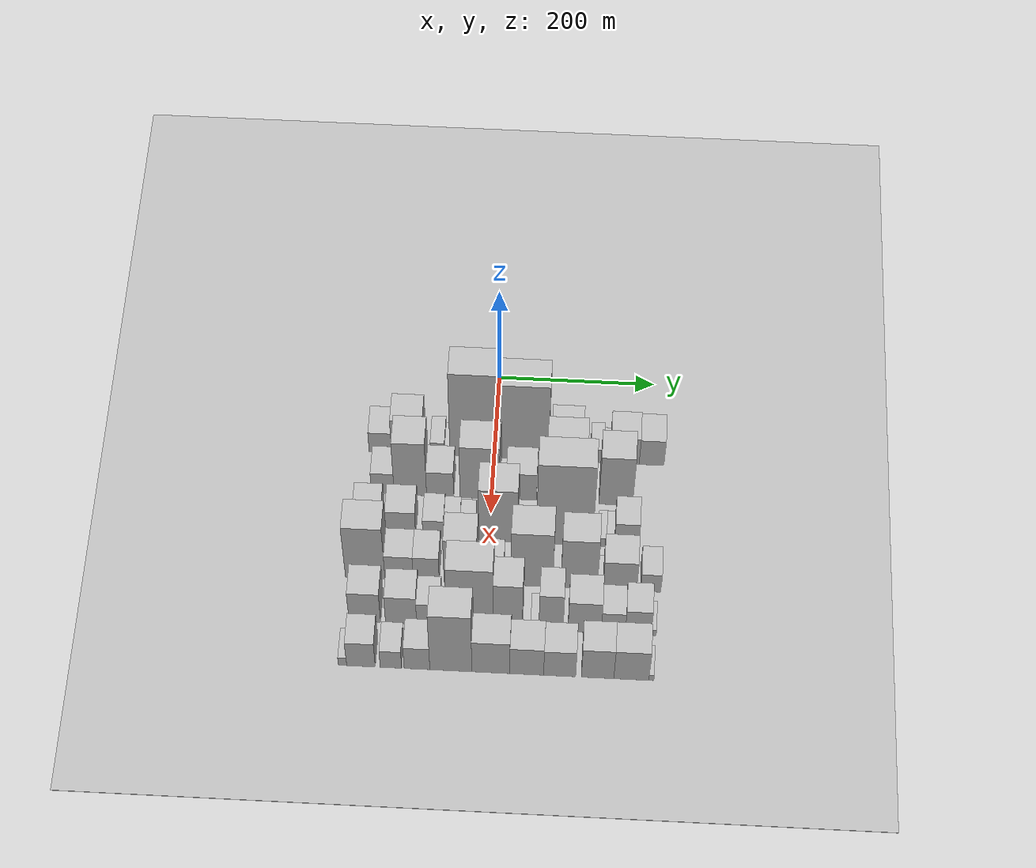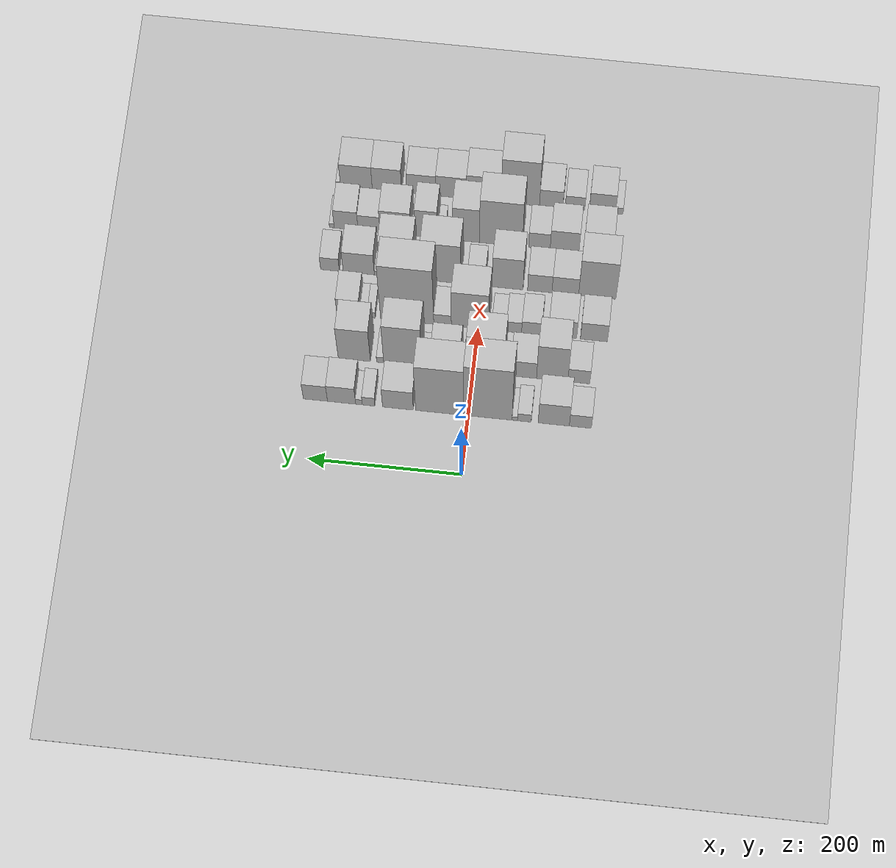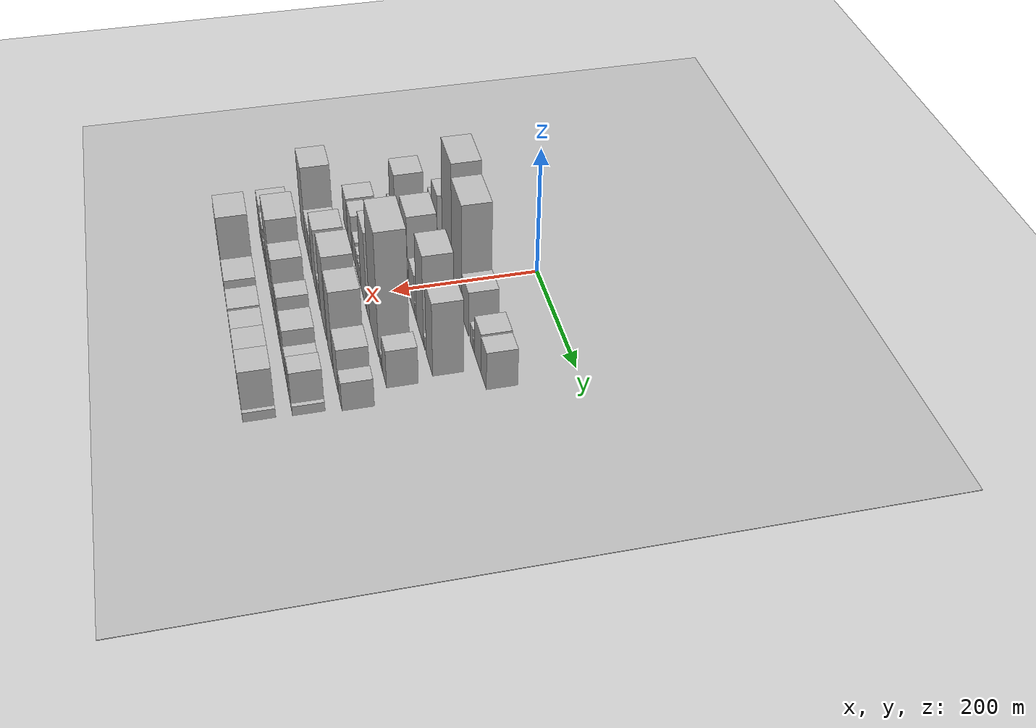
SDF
<sdf version="1.6">
 <world name="default">
  <include><name>ground_plane_1</name><uri>model://HANNAS_ground_plane</uri></include>
  <include>
   <name>ground_plane_2</name>
   <uri>model://HANNAS_ground_plane</uri>
   <pose>100 0 0  0 0 0</pose>
  </include>
  <model name="building_22">
   <static>1</static>
   <pose>100.0000 -145.6311 0 0.000000 0.000000 0.000000</pose>
   <link name="link">
    <pose>0 0 24.00 0 0 0</pose>
    <collision name="collision"><geometry><box><size>40.0000 28.5881 48.0000</size></box></geometry></collision>
    <visual name="visual">
     <cast_shadows>0</cast_shadows>
     <geometry><box><size>40.0000 28.5881 48.0000</size></box></geometry>
     <material>
      <script>
       <uri>model://HANNAS_wall/materials/scripts</uri>
       <uri>model://HANNAS_wall/materials/textures</uri>
       <name>vrc/HANNAS_wall</name>
      </script>
     </material>
    </visual>
   </link>
  </model>
  <model name="building_23">
   <static>1</static>
   <pose>100.0000 -111.0556 0 0.000000 0.000000 0.000000</pose>
   <link name="link">
    <pose>0 0 40.50 0 0 0</pose>
    <collision name="collision"><geometry><box><size>40.0000 40.5629 81.0000</size></box></geometry></collision>
    <visual name="visual">
     <cast_shadows>0</cast_shadows>
     <geometry><box><size>40.0000 40.5629 81.0000</size></box></geometry>
     <material>
      <script>
       <uri>model://HANNAS_wall/materials/scripts</uri>
       <uri>model://HANNAS_wall/materials/textures</uri>
       <name>vrc/HANNAS_wall</name>
      </script>
     </material>
    </visual>
   </link>
  </model>
  <model name="building_24">
   <static>1</static>
   <pose>100.0000 -72.7800 0 0.000000 0.000000 0.000000</pose>
   <link name="link">
    <pose>0 0 15.00 0 0 0</pose>
    <collision name="collision"><geometry><box><size>40.0000 17.9882 30.0000</size></box></geometry></collision>
    <visual name="visual">
     <cast_shadows>0</cast_shadows>
     <geometry><box><size>40.0000 17.9882 30.0000</size></box></geometry>
     <material>
      <script>
       <uri>model://HANNAS_wall/materials/scripts</uri>
       <uri>model://HANNAS_wall/materials/textures</uri>
       <name>vrc/HANNAS_wall</name>
      </script>
     </material>
    </visual>
   </link>
  </model>
  <model name="building_25">
   <static>1</static>
   <pose>100.0000 -60.3088 0 0.000000 0.000000 0.000000</pose>
   <link name="link">
    <pose>0 0 7.50 0 0 0</pose>
    <collision name="collision"><geometry><box><size>40.0000 6.9542 15.0000</size></box></geometry></collision>
    <visual name="visual">
     <cast_shadows>0</cast_shadows>
     <geometry><box><size>40.0000 6.9542 15.0000</size></box></geometry>
     <material>
      <script>
       <uri>model://HANNAS_wall/materials/scripts</uri>
       <uri>model://HANNAS_wall/materials/textures</uri>
       <name>vrc/HANNAS_wall</name>
      </script>
     </material>
    </visual>
   </link>
  </model>
  <model name="building_26">
   <static>1</static>
   <pose>100.0000 -25.2397 0 0.000000 0.000000 0.000000</pose>
   <link name="link">
    <pose>0 0 99.00 0 0 0</pose>
    <collision name="collision"><geometry><box><size>40.0000 63.1840 198.0000</size></box></geometry></collision>
    <visual name="visual">
     <cast_shadows>0</cast_shadows>
     <geometry><box><size>40.0000 63.1840 198.0000</size></box></geometry>
     <material>
      <script>
       <uri>model://HANNAS_wall/materials/scripts</uri>
       <uri>model://HANNAS_wall/materials/textures</uri>
       <name>vrc/HANNAS_wall</name>
      </script>
     </material>
    </visual>
   </link>
  </model>
  <model name="building_27">
   <static>1</static>
   <pose>100.0000 37.5403 0 0.000000 0.000000 0.000000</pose>
   <link name="link">
    <pose>0 0 88.50 0 0 0</pose>
    <collision name="collision"><geometry><box><size>40.0000 62.3761 177.0000</size></box></geometry></collision>
    <visual name="visual">
     <cast_shadows>0</cast_shadows>
     <geometry><box><size>40.0000 62.3761 177.0000</size></box></geometry>
     <material>
      <script>
       <uri>model://HANNAS_wall/materials/scripts</uri>
       <uri>model://HANNAS_wall/materials/textures</uri>
       <name>vrc/HANNAS_wall</name>
      </script>
     </material>
    </visual>
   </link>
  </model>
  <model name="building_28">
   <static>1</static>
   <pose>100.0000 91.8347 0 0.000000 0.000000 0.000000</pose>
   <link name="link">
    <pose>0 0 36.00 0 0 0</pose>
    <collision name="collision"><geometry><box><size>40.0000 40.2126 72.0000</size></box></geometry></collision>
    <visual name="visual">
     <cast_shadows>0</cast_shadows>
     <geometry><box><size>40.0000 40.2126 72.0000</size></box></geometry>
     <material>
      <script>
       <uri>model://HANNAS_wall/materials/scripts</uri>
       <uri>model://HANNAS_wall/materials/textures</uri>
       <name>vrc/HANNAS_wall</name>
      </script>
     </material>
    </visual>
   </link>
  </model>
  <model name="building_29">
   <static>1</static>
   <pose>100.0000 130.2012 0 0.000000 0.000000 0.000000</pose>
   <link name="link">
    <pose>0 0 16.50 0 0 0</pose>
    <collision name="collision"><geometry><box><size>40.0000 16.5202 33.0000</size></box></geometry></collision>
    <visual name="visual">
     <cast_shadows>0</cast_shadows>
     <geometry><box><size>40.0000 16.5202 33.0000</size></box></geometry>
     <material>
      <script>
       <uri>model://HANNAS_wall/materials/scripts</uri>
       <uri>model://HANNAS_wall/materials/textures</uri>
       <name>vrc/HANNAS_wall</name>
      </script>
     </material>
    </visual>
   </link>
  </model>
  <model name="building_30">
   <static>1</static>
   <pose>100.0000 142.7004 0 0.000000 0.000000 0.000000</pose>
   <link name="link">
    <pose>0 0 10.50 0 0 0</pose>
    <collision name="collision"><geometry><box><size>40.0000 8.4783 21.0000</size></box></geometry></collision>
    <visual name="visual">
     <cast_shadows>0</cast_shadows>
     <geometry><box><size>40.0000 8.4783 21.0000</size></box></geometry>
     <material>
      <script>
       <uri>model://HANNAS_wall/materials/scripts</uri>
       <uri>model://HANNAS_wall/materials/textures</uri>
       <name>vrc/HANNAS_wall</name>
      </script>
     </material>
    </visual>
   </link>
  </model>
  <model name="building_31">
   <static>1</static>
   <pose>100.0000 165.3753 0 0.000000 0.000000 0.000000</pose>
   <link name="link">
    <pose>0 0 31.50 0 0 0</pose>
    <collision name="collision"><geometry><box><size>40.0000 36.8715 63.0000</size></box></geometry></collision>
    <visual name="visual">
     <cast_shadows>0</cast_shadows>
     <geometry><box><size>40.0000 36.8715 63.0000</size></box></geometry>
     <material>
      <script>
       <uri>model://HANNAS_wall/materials/scripts</uri>
       <uri>model://HANNAS_wall/materials/textures</uri>
       <name>vrc/HANNAS_wall</name>
      </script>
     </material>
    </visual>
   </link>
  </model>
  <model name="building_32">
   <static>1</static>
   <pose>100.0000 199.5720 0 0.000000 0.000000 0.000000</pose>
   <link name="link">
    <pose>0 0 30.00 0 0 0</pose>
    <collision name="collision"><geometry><box><size>40.0000 31.5218 60.0000</size></box></geometry></collision>
    <visual name="visual">
     <cast_shadows>0</cast_shadows>
     <geometry><box><size>40.0000 31.5218 60.0000</size></box></geometry>
     <material>
      <script>
       <uri>model://HANNAS_wall/materials/scripts</uri>
       <uri>model://HANNAS_wall/materials/textures</uri>
       <name>vrc/HANNAS_wall</name>
      </script>
     </material>
    </visual>
   </link>
  </model>
  <model name="building_75">
   <static>1</static>
   <pose>160.0000 -137.8354 0 0.000000 0.000000 0.000000</pose>
   <link name="link">
    <pose>0 0 25.50 0 0 0</pose>
    <collision name="collision"><geometry><box><size>40.0000 28.6301 51.0000</size></box></geometry></collision>
    <visual name="visual">
     <cast_shadows>0</cast_shadows>
     <geometry><box><size>40.0000 28.6301 51.0000</size></box></geometry>
     <material>
      <script>
       <uri>model://HANNAS_wall/materials/scripts</uri>
       <uri>model://HANNAS_wall/materials/textures</uri>
       <name>vrc/HANNAS_wall</name>
      </script>
     </material>
    </visual>
   </link>
  </model>
  <model name="building_76">
   <static>1</static>
   <pose>160.0000 -103.0499 0 0.000000 0.000000 0.000000</pose>
   <link name="link">
    <pose>0 0 64.50 0 0 0</pose>
    <collision name="collision"><geometry><box><size>40.0000 40.9409 129.0000</size></box></geometry></collision>
    <visual name="visual">
     <cast_shadows>0</cast_shadows>
     <geometry><box><size>40.0000 40.9409 129.0000</size></box></geometry>
     <material>
      <script>
       <uri>model://HANNAS_wall/materials/scripts</uri>
       <uri>model://HANNAS_wall/materials/textures</uri>
       <name>vrc/HANNAS_wall</name>
      </script>
     </material>
    </visual>
   </link>
  </model>
  <model name="building_77">
   <static>1</static>
   <pose>160.0000 -65.5021 0 0.000000 0.000000 0.000000</pose>
   <link name="link">
    <pose>0 0 30.00 0 0 0</pose>
    <collision name="collision"><geometry><box><size>40.0000 34.1546 60.0000</size></box></geometry></collision>
    <visual name="visual">
     <cast_shadows>0</cast_shadows>
     <geometry><box><size>40.0000 34.1546 60.0000</size></box></geometry>
     <material>
      <script>
       <uri>model://HANNAS_wall/materials/scripts</uri>
       <uri>model://HANNAS_wall/materials/textures</uri>
       <name>vrc/HANNAS_wall</name>
      </script>
     </material>
    </visual>
   </link>
  </model>
  <model name="building_78">
   <static>1</static>
   <pose>160.0000 -15.3970 0 0.000000 0.000000 0.000000</pose>
   <link name="link">
    <pose>0 0 63.00 0 0 0</pose>
    <collision name="collision"><geometry><box><size>40.0000 50.0556 126.0000</size></box></geometry></collision>
    <visual name="visual">
     <cast_shadows>0</cast_shadows>
     <geometry><box><size>40.0000 50.0556 126.0000</size></box></geometry>
     <material>
      <script>
       <uri>model://HANNAS_wall/materials/scripts</uri>
       <uri>model://HANNAS_wall/materials/textures</uri>
       <name>vrc/HANNAS_wall</name>
      </script>
     </material>
    </visual>
   </link>
  </model>
  <model name="building_79">
   <static>1</static>
   <pose>160.0000 36.9061 0 0.000000 0.000000 0.000000</pose>
   <link name="link">
    <pose>0 0 33.00 0 0 0</pose>
    <collision name="collision"><geometry><box><size>40.0000 38.5506 66.0000</size></box></geometry></collision>
    <visual name="visual">
     <cast_shadows>0</cast_shadows>
     <geometry><box><size>40.0000 38.5506 66.0000</size></box></geometry>
     <material>
      <script>
       <uri>model://HANNAS_wall/materials/scripts</uri>
       <uri>model://HANNAS_wall/materials/textures</uri>
       <name>vrc/HANNAS_wall</name>
      </script>
     </material>
    </visual>
   </link>
  </model>
  <model name="building_80">
   <static>1</static>
   <pose>160.0000 61.9973 0 0.000000 0.000000 0.000000</pose>
   <link name="link">
    <pose>0 0 12.00 0 0 0</pose>
    <collision name="collision"><geometry><box><size>40.0000 11.6319 24.0000</size></box></geometry></collision>
    <visual name="visual">
     <cast_shadows>0</cast_shadows>
     <geometry><box><size>40.0000 11.6319 24.0000</size></box></geometry>
     <material>
      <script>
       <uri>model://HANNAS_wall/materials/scripts</uri>
       <uri>model://HANNAS_wall/materials/textures</uri>
       <name>vrc/HANNAS_wall</name>
      </script>
     </material>
    </visual>
   </link>
  </model>
  <model name="building_81">
   <static>1</static>
   <pose>160.0000 92.5767 0 0.000000 0.000000 0.000000</pose>
   <link name="link">
    <pose>0 0 72.00 0 0 0</pose>
    <collision name="collision"><geometry><box><size>40.0000 49.5269 144.0000</size></box></geometry></collision>
    <visual name="visual">
     <cast_shadows>0</cast_shadows>
     <geometry><box><size>40.0000 49.5269 144.0000</size></box></geometry>
     <material>
      <script>
       <uri>model://HANNAS_wall/materials/scripts</uri>
       <uri>model://HANNAS_wall/materials/textures</uri>
       <name>vrc/HANNAS_wall</name>
      </script>
     </material>
    </visual>
   </link>
  </model>
  <model name="building_82">
   <static>1</static>
   <pose>160.0000 122.0326 0 0.000000 0.000000 0.000000</pose>
   <link name="link">
    <pose>0 0 10.50 0 0 0</pose>
    <collision name="collision"><geometry><box><size>40.0000 9.3848 21.0000</size></box></geometry></collision>
    <visual name="visual">
     <cast_shadows>0</cast_shadows>
     <geometry><box><size>40.0000 9.3848 21.0000</size></box></geometry>
     <material>
      <script>
       <uri>model://HANNAS_wall/materials/scripts</uri>
       <uri>model://HANNAS_wall/materials/textures</uri>
       <name>vrc/HANNAS_wall</name>
      </script>
     </material>
    </visual>
   </link>
  </model>
  <model name="building_83">
   <static>1</static>
   <pose>160.0000 155.8743 0 0.000000 0.000000 0.000000</pose>
   <link name="link">
    <pose>0 0 58.50 0 0 0</pose>
    <collision name="collision"><geometry><box><size>40.0000 42.2986 117.0000</size></box></geometry></collision>
    <visual name="visual">
     <cast_shadows>0</cast_shadows>
     <geometry><box><size>40.0000 42.2986 117.0000</size></box></geometry>
     <material>
      <script>
       <uri>model://HANNAS_wall/materials/scripts</uri>
       <uri>model://HANNAS_wall/materials/textures</uri>
       <name>vrc/HANNAS_wall</name>
      </script>
     </material>
    </visual>
   </link>
  </model>
  <model name="building_122">
   <static>1</static>
   <pose>220.0000 -151.9101 0 0.000000 0.000000 0.000000</pose>
   <link name="link">
    <pose>0 0 31.50 0 0 0</pose>
    <collision name="collision"><geometry><box><size>40.0000 35.3085 63.0000</size></box></geometry></collision>
    <visual name="visual">
     <cast_shadows>0</cast_shadows>
     <geometry><box><size>40.0000 35.3085 63.0000</size></box></geometry>
     <material>
      <script>
       <uri>model://HANNAS_wall/materials/scripts</uri>
       <uri>model://HANNAS_wall/materials/textures</uri>
       <name>vrc/HANNAS_wall</name>
      </script>
     </material>
    </visual>
   </link>
  </model>
  <model name="building_123">
   <static>1</static>
   <pose>220.0000 -110.6996 0 0.000000 0.000000 0.000000</pose>
   <link name="link">
    <pose>0 0 31.50 0 0 0</pose>
    <collision name="collision"><geometry><box><size>40.0000 37.1125 63.0000</size></box></geometry></collision>
    <visual name="visual">
     <cast_shadows>0</cast_shadows>
     <geometry><box><size>40.0000 37.1125 63.0000</size></box></geometry>
     <material>
      <script>
       <uri>model://HANNAS_wall/materials/scripts</uri>
       <uri>model://HANNAS_wall/materials/textures</uri>
       <name>vrc/HANNAS_wall</name>
      </script>
     </material>
    </visual>
   </link>
  </model>
  <model name="building_124">
   <static>1</static>
   <pose>220.0000 -70.0906 0 0.000000 0.000000 0.000000</pose>
   <link name="link">
    <pose>0 0 22.50 0 0 0</pose>
    <collision name="collision"><geometry><box><size>40.0000 26.1054 45.0000</size></box></geometry></collision>
    <visual name="visual">
     <cast_shadows>0</cast_shadows>
     <geometry><box><size>40.0000 26.1054 45.0000</size></box></geometry>
     <material>
      <script>
       <uri>model://HANNAS_wall/materials/scripts</uri>
       <uri>model://HANNAS_wall/materials/textures</uri>
       <name>vrc/HANNAS_wall</name>
      </script>
     </material>
    </visual>
   </link>
  </model>
  <model name="building_125">
   <static>1</static>
   <pose>220.0000 -47.0061 0 0.000000 0.000000 0.000000</pose>
   <link name="link">
    <pose>0 0 19.50 0 0 0</pose>
    <collision name="collision"><geometry><box><size>40.0000 20.0635 39.0000</size></box></geometry></collision>
    <visual name="visual">
     <cast_shadows>0</cast_shadows>
     <geometry><box><size>40.0000 20.0635 39.0000</size></box></geometry>
     <material>
      <script>
       <uri>model://HANNAS_wall/materials/scripts</uri>
       <uri>model://HANNAS_wall/materials/textures</uri>
       <name>vrc/HANNAS_wall</name>
      </script>
     </material>
    </visual>
   </link>
  </model>
  <model name="building_126">
   <static>1</static>
   <pose>220.0000 -27.3374 0 0.000000 0.000000 0.000000</pose>
   <link name="link">
    <pose>0 0 16.50 0 0 0</pose>
    <collision name="collision"><geometry><box><size>40.0000 19.2739 33.0000</size></box></geometry></collision>
    <visual name="visual">
     <cast_shadows>0</cast_shadows>
     <geometry><box><size>40.0000 19.2739 33.0000</size></box></geometry>
     <material>
      <script>
       <uri>model://HANNAS_wall/materials/scripts</uri>
       <uri>model://HANNAS_wall/materials/textures</uri>
       <name>vrc/HANNAS_wall</name>
      </script>
     </material>
    </visual>
   </link>
  </model>
  <model name="building_127">
   <static>1</static>
   <pose>220.0000 10.8235 0 0.000000 0.000000 0.000000</pose>
   <link name="link">
    <pose>0 0 64.50 0 0 0</pose>
    <collision name="collision"><geometry><box><size>40.0000 49.0480 129.0000</size></box></geometry></collision>
    <visual name="visual">
     <cast_shadows>0</cast_shadows>
     <geometry><box><size>40.0000 49.0480 129.0000</size></box></geometry>
     <material>
      <script>
       <uri>model://HANNAS_wall/materials/scripts</uri>
       <uri>model://HANNAS_wall/materials/textures</uri>
       <name>vrc/HANNAS_wall</name>
      </script>
     </material>
    </visual>
   </link>
  </model>
  <model name="building_128">
   <static>1</static>
   <pose>220.0000 46.9144 0 0.000000 0.000000 0.000000</pose>
   <link name="link">
    <pose>0 0 19.50 0 0 0</pose>
    <collision name="collision"><geometry><box><size>40.0000 23.1339 39.0000</size></box></geometry></collision>
    <visual name="visual">
     <cast_shadows>0</cast_shadows>
     <geometry><box><size>40.0000 23.1339 39.0000</size></box></geometry>
     <material>
      <script>
       <uri>model://HANNAS_wall/materials/scripts</uri>
       <uri>model://HANNAS_wall/materials/textures</uri>
       <name>vrc/HANNAS_wall</name>
      </script>
     </material>
    </visual>
   </link>
  </model>
  <model name="building_129">
   <static>1</static>
   <pose>220.0000 93.4611 0 0.000000 0.000000 0.000000</pose>
   <link name="link">
    <pose>0 0 99.00 0 0 0</pose>
    <collision name="collision"><geometry><box><size>40.0000 69.9594 198.0000</size></box></geometry></collision>
    <visual name="visual">
     <cast_shadows>0</cast_shadows>
     <geometry><box><size>40.0000 69.9594 198.0000</size></box></geometry>
     <material>
      <script>
       <uri>model://HANNAS_wall/materials/scripts</uri>
       <uri>model://HANNAS_wall/materials/textures</uri>
       <name>vrc/HANNAS_wall</name>
      </script>
     </material>
    </visual>
   </link>
  </model>
  <model name="building_130">
   <static>1</static>
   <pose>220.0000 140.6712 0 0.000000 0.000000 0.000000</pose>
   <link name="link">
    <pose>0 0 10.50 0 0 0</pose>
    <collision name="collision"><geometry><box><size>40.0000 10.4609 21.0000</size></box></geometry></collision>
    <visual name="visual">
     <cast_shadows>0</cast_shadows>
     <geometry><box><size>40.0000 10.4609 21.0000</size></box></geometry>
     <material>
      <script>
       <uri>model://HANNAS_wall/materials/scripts</uri>
       <uri>model://HANNAS_wall/materials/textures</uri>
       <name>vrc/HANNAS_wall</name>
      </script>
     </material>
    </visual>
   </link>
  </model>
  <model name="building_131">
   <static>1</static>
   <pose>220.0000 150.9145 0 0.000000 0.000000 0.000000</pose>
   <link name="link">
    <pose>0 0 10.50 0 0 0</pose>
    <collision name="collision"><geometry><box><size>40.0000 10.0255 21.0000</size></box></geometry></collision>
    <visual name="visual">
     <cast_shadows>0</cast_shadows>
     <geometry><box><size>40.0000 10.0255 21.0000</size></box></geometry>
     <material>
      <script>
       <uri>model://HANNAS_wall/materials/scripts</uri>
       <uri>model://HANNAS_wall/materials/textures</uri>
       <name>vrc/HANNAS_wall</name>
      </script>
     </material>
    </visual>
   </link>
  </model>
  <model name="building_132">
   <static>1</static>
   <pose>220.0000 170.9903 0 0.000000 0.000000 0.000000</pose>
   <link name="link">
    <pose>0 0 30.00 0 0 0</pose>
    <collision name="collision"><geometry><box><size>40.0000 30.1262 60.0000</size></box></geometry></collision>
    <visual name="visual">
     <cast_shadows>0</cast_shadows>
     <geometry><box><size>40.0000 30.1262 60.0000</size></box></geometry>
     <material>
      <script>
       <uri>model://HANNAS_wall/materials/scripts</uri>
       <uri>model://HANNAS_wall/materials/textures</uri>
       <name>vrc/HANNAS_wall</name>
      </script>
     </material>
    </visual>
   </link>
  </model>
  <model name="building_177">
   <static>1</static>
   <pose>280.0000 -150.5969 0 0.000000 0.000000 0.000000</pose>
   <link name="link">
    <pose>0 0 64.50 0 0 0</pose>
    <collision name="collision"><geometry><box><size>40.0000 48.9956 129.0000</size></box></geometry></collision>
    <visual name="visual">
     <cast_shadows>0</cast_shadows>
     <geometry><box><size>40.0000 48.9956 129.0000</size></box></geometry>
     <material>
      <script>
       <uri>model://HANNAS_wall/materials/scripts</uri>
       <uri>model://HANNAS_wall/materials/textures</uri>
       <name>vrc/HANNAS_wall</name>
      </script>
     </material>
    </visual>
   </link>
  </model>
  <model name="building_178">
   <static>1</static>
   <pose>280.0000 -108.5645 0 0.000000 0.000000 0.000000</pose>
   <link name="link">
    <pose>0 0 30.00 0 0 0</pose>
    <collision name="collision"><geometry><box><size>40.0000 35.0691 60.0000</size></box></geometry></collision>
    <visual name="visual">
     <cast_shadows>0</cast_shadows>
     <geometry><box><size>40.0000 35.0691 60.0000</size></box></geometry>
     <material>
      <script>
       <uri>model://HANNAS_wall/materials/scripts</uri>
       <uri>model://HANNAS_wall/materials/textures</uri>
       <name>vrc/HANNAS_wall</name>
      </script>
     </material>
    </visual>
   </link>
  </model>
  <model name="building_179">
   <static>1</static>
   <pose>280.0000 -74.9290 0 0.000000 0.000000 0.000000</pose>
   <link name="link">
    <pose>0 0 30.00 0 0 0</pose>
    <collision name="collision"><geometry><box><size>40.0000 32.2019 60.0000</size></box></geometry></collision>
    <visual name="visual">
     <cast_shadows>0</cast_shadows>
     <geometry><box><size>40.0000 32.2019 60.0000</size></box></geometry>
     <material>
      <script>
       <uri>model://HANNAS_wall/materials/scripts</uri>
       <uri>model://HANNAS_wall/materials/textures</uri>
       <name>vrc/HANNAS_wall</name>
      </script>
     </material>
    </visual>
   </link>
  </model>
  <model name="building_180">
   <static>1</static>
   <pose>280.0000 -32.3581 0 0.000000 0.000000 0.000000</pose>
   <link name="link">
    <pose>0 0 54.00 0 0 0</pose>
    <collision name="collision"><geometry><box><size>40.0000 40.9400 108.0000</size></box></geometry></collision>
    <visual name="visual">
     <cast_shadows>0</cast_shadows>
     <geometry><box><size>40.0000 40.9400 108.0000</size></box></geometry>
     <material>
      <script>
       <uri>model://HANNAS_wall/materials/scripts</uri>
       <uri>model://HANNAS_wall/materials/textures</uri>
       <name>vrc/HANNAS_wall</name>
      </script>
     </material>
    </visual>
   </link>
  </model>
  <model name="building_181">
   <static>1</static>
   <pose>280.0000 8.9146 0 0.000000 0.000000 0.000000</pose>
   <link name="link">
    <pose>0 0 22.50 0 0 0</pose>
    <collision name="collision"><geometry><box><size>40.0000 23.6054 45.0000</size></box></geometry></collision>
    <visual name="visual">
     <cast_shadows>0</cast_shadows>
     <geometry><box><size>40.0000 23.6054 45.0000</size></box></geometry>
     <material>
      <script>
       <uri>model://HANNAS_wall/materials/scripts</uri>
       <uri>model://HANNAS_wall/materials/textures</uri>
       <name>vrc/HANNAS_wall</name>
      </script>
     </material>
    </visual>
   </link>
  </model>
  <model name="building_182">
   <static>1</static>
   <pose>280.0000 55.6610 0 0.000000 0.000000 0.000000</pose>
   <link name="link">
    <pose>0 0 67.50 0 0 0</pose>
    <collision name="collision"><geometry><box><size>40.0000 51.8874 135.0000</size></box></geometry></collision>
    <visual name="visual">
     <cast_shadows>0</cast_shadows>
     <geometry><box><size>40.0000 51.8874 135.0000</size></box></geometry>
     <material>
      <script>
       <uri>model://HANNAS_wall/materials/scripts</uri>
       <uri>model://HANNAS_wall/materials/textures</uri>
       <name>vrc/HANNAS_wall</name>
      </script>
     </material>
    </visual>
   </link>
  </model>
  <model name="building_183">
   <static>1</static>
   <pose>280.0000 114.0816 0 0.000000 0.000000 0.000000</pose>
   <link name="link">
    <pose>0 0 61.50 0 0 0</pose>
    <collision name="collision"><geometry><box><size>40.0000 44.9537 123.0000</size></box></geometry></collision>
    <visual name="visual">
     <cast_shadows>0</cast_shadows>
     <geometry><box><size>40.0000 44.9537 123.0000</size></box></geometry>
     <material>
      <script>
       <uri>model://HANNAS_wall/materials/scripts</uri>
       <uri>model://HANNAS_wall/materials/textures</uri>
       <name>vrc/HANNAS_wall</name>
      </script>
     </material>
    </visual>
   </link>
  </model>
  <model name="building_184">
   <static>1</static>
   <pose>280.0000 140.1601 0 0.000000 0.000000 0.000000</pose>
   <link name="link">
    <pose>0 0 7.50 0 0 0</pose>
    <collision name="collision"><geometry><box><size>40.0000 7.2034 15.0000</size></box></geometry></collision>
    <visual name="visual">
     <cast_shadows>0</cast_shadows>
     <geometry><box><size>40.0000 7.2034 15.0000</size></box></geometry>
     <material>
      <script>
       <uri>model://HANNAS_wall/materials/scripts</uri>
       <uri>model://HANNAS_wall/materials/textures</uri>
       <name>vrc/HANNAS_wall</name>
      </script>
     </material>
    </visual>
   </link>
  </model>
  <model name="building_185">
   <static>1</static>
   <pose>280.0000 164.4192 0 0.000000 0.000000 0.000000</pose>
   <link name="link">
    <pose>0 0 36.00 0 0 0</pose>
    <collision name="collision"><geometry><box><size>40.0000 41.3148 72.0000</size></box></geometry></collision>
    <visual name="visual">
     <cast_shadows>0</cast_shadows>
     <geometry><box><size>40.0000 41.3148 72.0000</size></box></geometry>
     <material>
      <script>
       <uri>model://HANNAS_wall/materials/scripts</uri>
       <uri>model://HANNAS_wall/materials/textures</uri>
       <name>vrc/HANNAS_wall</name>
      </script>
     </material>
    </visual>
   </link>
  </model>
  <model name="building_186">
   <static>1</static>
   <pose>280.0000 202.5063 0 0.000000 0.000000 0.000000</pose>
   <link name="link">
    <pose>0 0 22.50 0 0 0</pose>
    <collision name="collision"><geometry><box><size>40.0000 24.8593 45.0000</size></box></geometry></collision>
    <visual name="visual">
     <cast_shadows>0</cast_shadows>
     <geometry><box><size>40.0000 24.8593 45.0000</size></box></geometry>
     <material>
      <script>
       <uri>model://HANNAS_wall/materials/scripts</uri>
       <uri>model://HANNAS_wall/materials/textures</uri>
       <name>vrc/HANNAS_wall</name>
      </script>
     </material>
    </visual>
   </link>
  </model>
  <model name="building_232">
   <static>1</static>
   <pose>340.0000 -146.2612 0 0.000000 0.000000 0.000000</pose>
   <link name="link">
    <pose>0 0 37.50 0 0 0</pose>
    <collision name="collision"><geometry><box><size>40.0000 38.7765 75.0000</size></box></geometry></collision>
    <visual name="visual">
     <cast_shadows>0</cast_shadows>
     <geometry><box><size>40.0000 38.7765 75.0000</size></box></geometry>
     <material>
      <script>
       <uri>model://HANNAS_wall/materials/scripts</uri>
       <uri>model://HANNAS_wall/materials/textures</uri>
       <name>vrc/HANNAS_wall</name>
      </script>
     </material>
    </visual>
   </link>
  </model>
  <model name="building_233">
   <static>1</static>
   <pose>340.0000 -101.7424 0 0.000000 0.000000 0.000000</pose>
   <link name="link">
    <pose>0 0 34.50 0 0 0</pose>
    <collision name="collision"><geometry><box><size>40.0000 38.2611 69.0000</size></box></geometry></collision>
    <visual name="visual">
     <cast_shadows>0</cast_shadows>
     <geometry><box><size>40.0000 38.2611 69.0000</size></box></geometry>
     <material>
      <script>
       <uri>model://HANNAS_wall/materials/scripts</uri>
       <uri>model://HANNAS_wall/materials/textures</uri>
       <name>vrc/HANNAS_wall</name>
      </script>
     </material>
    </visual>
   </link>
  </model>
  <model name="building_234">
   <static>1</static>
   <pose>340.0000 -68.2696 0 0.000000 0.000000 0.000000</pose>
   <link name="link">
    <pose>0 0 27.00 0 0 0</pose>
    <collision name="collision"><geometry><box><size>40.0000 28.6844 54.0000</size></box></geometry></collision>
    <visual name="visual">
     <cast_shadows>0</cast_shadows>
     <geometry><box><size>40.0000 28.6844 54.0000</size></box></geometry>
     <material>
      <script>
       <uri>model://HANNAS_wall/materials/scripts</uri>
       <uri>model://HANNAS_wall/materials/textures</uri>
       <name>vrc/HANNAS_wall</name>
      </script>
     </material>
    </visual>
   </link>
  </model>
  <model name="building_235">
   <static>1</static>
   <pose>340.0000 -17.5089 0 0.000000 0.000000 0.000000</pose>
   <link name="link">
    <pose>0 0 75.00 0 0 0</pose>
    <collision name="collision"><geometry><box><size>40.0000 56.8370 150.0000</size></box></geometry></collision>
    <visual name="visual">
     <cast_shadows>0</cast_shadows>
     <geometry><box><size>40.0000 56.8370 150.0000</size></box></geometry>
     <material>
      <script>
       <uri>model://HANNAS_wall/materials/scripts</uri>
       <uri>model://HANNAS_wall/materials/textures</uri>
       <name>vrc/HANNAS_wall</name>
      </script>
     </material>
    </visual>
   </link>
  </model>
  <model name="building_236">
   <static>1</static>
   <pose>340.0000 28.9176 0 0.000000 0.000000 0.000000</pose>
   <link name="link">
    <pose>0 0 57.00 0 0 0</pose>
    <collision name="collision"><geometry><box><size>40.0000 36.0161 114.0000</size></box></geometry></collision>
    <visual name="visual">
     <cast_shadows>0</cast_shadows>
     <geometry><box><size>40.0000 36.0161 114.0000</size></box></geometry>
     <material>
      <script>
       <uri>model://HANNAS_wall/materials/scripts</uri>
       <uri>model://HANNAS_wall/materials/textures</uri>
       <name>vrc/HANNAS_wall</name>
      </script>
     </material>
    </visual>
   </link>
  </model>
  <model name="building_237">
   <static>1</static>
   <pose>340.0000 62.0020 0 0.000000 0.000000 0.000000</pose>
   <link name="link">
    <pose>0 0 10.50 0 0 0</pose>
    <collision name="collision"><geometry><box><size>40.0000 10.1527 21.0000</size></box></geometry></collision>
    <visual name="visual">
     <cast_shadows>0</cast_shadows>
     <geometry><box><size>40.0000 10.1527 21.0000</size></box></geometry>
     <material>
      <script>
       <uri>model://HANNAS_wall/materials/scripts</uri>
       <uri>model://HANNAS_wall/materials/textures</uri>
       <name>vrc/HANNAS_wall</name>
      </script>
     </material>
    </visual>
   </link>
  </model>
  <model name="building_238">
   <static>1</static>
   <pose>340.0000 81.9165 0 0.000000 0.000000 0.000000</pose>
   <link name="link">
    <pose>0 0 46.50 0 0 0</pose>
    <collision name="collision"><geometry><box><size>40.0000 29.6761 93.0000</size></box></geometry></collision>
    <visual name="visual">
     <cast_shadows>0</cast_shadows>
     <geometry><box><size>40.0000 29.6761 93.0000</size></box></geometry>
     <material>
      <script>
       <uri>model://HANNAS_wall/materials/scripts</uri>
       <uri>model://HANNAS_wall/materials/textures</uri>
       <name>vrc/HANNAS_wall</name>
      </script>
     </material>
    </visual>
   </link>
  </model>
  <model name="building_239">
   <static>1</static>
   <pose>340.0000 123.0331 0 0.000000 0.000000 0.000000</pose>
   <link name="link">
    <pose>0 0 39.00 0 0 0</pose>
    <collision name="collision"><geometry><box><size>40.0000 40.5572 78.0000</size></box></geometry></collision>
    <visual name="visual">
     <cast_shadows>0</cast_shadows>
     <geometry><box><size>40.0000 40.5572 78.0000</size></box></geometry>
     <material>
      <script>
       <uri>model://HANNAS_wall/materials/scripts</uri>
       <uri>model://HANNAS_wall/materials/textures</uri>
       <name>vrc/HANNAS_wall</name>
      </script>
     </material>
    </visual>
   </link>
  </model>
  <model name="building_240">
   <static>1</static>
   <pose>340.0000 157.9282 0 0.000000 0.000000 0.000000</pose>
   <link name="link">
    <pose>0 0 27.00 0 0 0</pose>
    <collision name="collision"><geometry><box><size>40.0000 29.2330 54.0000</size></box></geometry></collision>
    <visual name="visual">
     <cast_shadows>0</cast_shadows>
     <geometry><box><size>40.0000 29.2330 54.0000</size></box></geometry>
     <material>
      <script>
       <uri>model://HANNAS_wall/materials/scripts</uri>
       <uri>model://HANNAS_wall/materials/textures</uri>
       <name>vrc/HANNAS_wall</name>
      </script>
     </material>
    </visual>
   </link>
  </model>
  <model name="building_241">
   <static>1</static>
   <pose>340.0000 188.3856 0 0.000000 0.000000 0.000000</pose>
   <link name="link">
    <pose>0 0 31.50 0 0 0</pose>
    <collision name="collision"><geometry><box><size>40.0000 31.6819 63.0000</size></box></geometry></collision>
    <visual name="visual">
     <cast_shadows>0</cast_shadows>
     <geometry><box><size>40.0000 31.6819 63.0000</size></box></geometry>
     <material>
      <script>
       <uri>model://HANNAS_wall/materials/scripts</uri>
       <uri>model://HANNAS_wall/materials/textures</uri>
       <name>vrc/HANNAS_wall</name>
      </script>
     </material>
    </visual>
   </link>
  </model>
  <model name="building_242">
   <static>1</static>
   <pose>340.0000 207.4656 0 0.000000 0.000000 0.000000</pose>
   <link name="link">
    <pose>0 0 7.50 0 0 0</pose>
    <collision name="collision"><geometry><box><size>40.0000 6.4781 15.0000</size></box></geometry></collision>
    <visual name="visual">
     <cast_shadows>0</cast_shadows>
     <geometry><box><size>40.0000 6.4781 15.0000</size></box></geometry>
     <material>
      <script>
       <uri>model://HANNAS_wall/materials/scripts</uri>
       <uri>model://HANNAS_wall/materials/textures</uri>
       <name>vrc/HANNAS_wall</name>
      </script>
     </material>
    </visual>
   </link>
  </model>
  <model name="building_284">
   <static>1</static>
   <pose>400.0000 -168.6383 0 0.000000 0.000000 0.000000</pose>
   <link name="link">
    <pose>0 0 10.50 0 0 0</pose>
    <collision name="collision"><geometry><box><size>40.0000 10.0844 21.0000</size></box></geometry></collision>
    <visual name="visual">
     <cast_shadows>0</cast_shadows>
     <geometry><box><size>40.0000 10.0844 21.0000</size></box></geometry>
     <material>
      <script>
       <uri>model://HANNAS_wall/materials/scripts</uri>
       <uri>model://HANNAS_wall/materials/textures</uri>
       <name>vrc/HANNAS_wall</name>
      </script>
     </material>
    </visual>
   </link>
  </model>
  <model name="building_285">
   <static>1</static>
   <pose>400.0000 -146.1944 0 0.000000 0.000000 0.000000</pose>
   <link name="link">
    <pose>0 0 31.50 0 0 0</pose>
    <collision name="collision"><geometry><box><size>40.0000 34.8034 63.0000</size></box></geometry></collision>
    <visual name="visual">
     <cast_shadows>0</cast_shadows>
     <geometry><box><size>40.0000 34.8034 63.0000</size></box></geometry>
     <material>
      <script>
       <uri>model://HANNAS_wall/materials/scripts</uri>
       <uri>model://HANNAS_wall/materials/textures</uri>
       <name>vrc/HANNAS_wall</name>
      </script>
     </material>
    </visual>
   </link>
  </model>
  <model name="building_286">
   <static>1</static>
   <pose>400.0000 -109.7541 0 0.000000 0.000000 0.000000</pose>
   <link name="link">
    <pose>0 0 22.50 0 0 0</pose>
    <collision name="collision"><geometry><box><size>40.0000 26.0773 45.0000</size></box></geometry></collision>
    <visual name="visual">
     <cast_shadows>0</cast_shadows>
     <geometry><box><size>40.0000 26.0773 45.0000</size></box></geometry>
     <material>
      <script>
       <uri>model://HANNAS_wall/materials/scripts</uri>
       <uri>model://HANNAS_wall/materials/textures</uri>
       <name>vrc/HANNAS_wall</name>
      </script>
     </material>
    </visual>
   </link>
  </model>
  <model name="building_287">
   <static>1</static>
   <pose>400.0000 -78.1052 0 0.000000 0.000000 0.000000</pose>
   <link name="link">
    <pose>0 0 28.50 0 0 0</pose>
    <collision name="collision"><geometry><box><size>40.0000 31.2205 57.0000</size></box></geometry></collision>
    <visual name="visual">
     <cast_shadows>0</cast_shadows>
     <geometry><box><size>40.0000 31.2205 57.0000</size></box></geometry>
     <material>
      <script>
       <uri>model://HANNAS_wall/materials/scripts</uri>
       <uri>model://HANNAS_wall/materials/textures</uri>
       <name>vrc/HANNAS_wall</name>
      </script>
     </material>
    </visual>
   </link>
  </model>
  <model name="building_288">
   <static>1</static>
   <pose>400.0000 -37.0117 0 0.000000 0.000000 0.000000</pose>
   <link name="link">
    <pose>0 0 73.50 0 0 0</pose>
    <collision name="collision"><geometry><box><size>40.0000 50.9664 147.0000</size></box></geometry></collision>
    <visual name="visual">
     <cast_shadows>0</cast_shadows>
     <geometry><box><size>40.0000 50.9664 147.0000</size></box></geometry>
     <material>
      <script>
       <uri>model://HANNAS_wall/materials/scripts</uri>
       <uri>model://HANNAS_wall/materials/textures</uri>
       <name>vrc/HANNAS_wall</name>
      </script>
     </material>
    </visual>
   </link>
  </model>
  <model name="building_289">
   <static>1</static>
   <pose>400.0000 11.5060 0 0.000000 0.000000 0.000000</pose>
   <link name="link">
    <pose>0 0 40.50 0 0 0</pose>
    <collision name="collision"><geometry><box><size>40.0000 46.0691 81.0000</size></box></geometry></collision>
    <visual name="visual">
     <cast_shadows>0</cast_shadows>
     <geometry><box><size>40.0000 46.0691 81.0000</size></box></geometry>
     <material>
      <script>
       <uri>model://HANNAS_wall/materials/scripts</uri>
       <uri>model://HANNAS_wall/materials/textures</uri>
       <name>vrc/HANNAS_wall</name>
      </script>
     </material>
    </visual>
   </link>
  </model>
  <model name="building_290">
   <static>1</static>
   <pose>400.0000 55.1021 0 0.000000 0.000000 0.000000</pose>
   <link name="link">
    <pose>0 0 34.50 0 0 0</pose>
    <collision name="collision"><geometry><box><size>40.0000 41.1230 69.0000</size></box></geometry></collision>
    <visual name="visual">
     <cast_shadows>0</cast_shadows>
     <geometry><box><size>40.0000 41.1230 69.0000</size></box></geometry>
     <material>
      <script>
       <uri>model://HANNAS_wall/materials/scripts</uri>
       <uri>model://HANNAS_wall/materials/textures</uri>
       <name>vrc/HANNAS_wall</name>
      </script>
     </material>
    </visual>
   </link>
  </model>
  <model name="building_291">
   <static>1</static>
   <pose>400.0000 95.0707 0 0.000000 0.000000 0.000000</pose>
   <link name="link">
    <pose>0 0 33.00 0 0 0</pose>
    <collision name="collision"><geometry><box><size>40.0000 38.8143 66.0000</size></box></geometry></collision>
    <visual name="visual">
     <cast_shadows>0</cast_shadows>
     <geometry><box><size>40.0000 38.8143 66.0000</size></box></geometry>
     <material>
      <script>
       <uri>model://HANNAS_wall/materials/scripts</uri>
       <uri>model://HANNAS_wall/materials/textures</uri>
       <name>vrc/HANNAS_wall</name>
      </script>
     </material>
    </visual>
   </link>
  </model>
  <model name="building_292">
   <static>1</static>
   <pose>400.0000 141.0817 0 0.000000 0.000000 0.000000</pose>
   <link name="link">
    <pose>0 0 37.50 0 0 0</pose>
    <collision name="collision"><geometry><box><size>40.0000 39.2076 75.0000</size></box></geometry></collision>
    <visual name="visual">
     <cast_shadows>0</cast_shadows>
     <geometry><box><size>40.0000 39.2076 75.0000</size></box></geometry>
     <material>
      <script>
       <uri>model://HANNAS_wall/materials/scripts</uri>
       <uri>model://HANNAS_wall/materials/textures</uri>
       <name>vrc/HANNAS_wall</name>
      </script>
     </material>
    </visual>
   </link>
  </model>
  <model name="building_293">
   <static>1</static>
   <pose>400.0000 181.8902 0 0.000000 0.000000 0.000000</pose>
   <link name="link">
    <pose>0 0 37.50 0 0 0</pose>
    <collision name="collision"><geometry><box><size>40.0000 42.4094 75.0000</size></box></geometry></collision>
    <visual name="visual">
     <cast_shadows>0</cast_shadows>
     <geometry><box><size>40.0000 42.4094 75.0000</size></box></geometry>
     <material>
      <script>
       <uri>model://HANNAS_wall/materials/scripts</uri>
       <uri>model://HANNAS_wall/materials/textures</uri>
       <name>vrc/HANNAS_wall</name>
      </script>
     </material>
    </visual>
   </link>
  </model>
  <model name="building_294">
   <static>1</static>
   <pose>400.0000 206.1501 0 0.000000 0.000000 0.000000</pose>
   <link name="link">
    <pose>0 0 7.50 0 0 0</pose>
    <collision name="collision"><geometry><box><size>40.0000 6.1104 15.0000</size></box></geometry></collision>
    <visual name="visual">
     <cast_shadows>0</cast_shadows>
     <geometry><box><size>40.0000 6.1104 15.0000</size></box></geometry>
     <material>
      <script>
       <uri>model://HANNAS_wall/materials/scripts</uri>
       <uri>model://HANNAS_wall/materials/textures</uri>
       <name>vrc/HANNAS_wall</name>
      </script>
     </material>
    </visual>
   </link>
  </model>
 </world>
</sdf>
